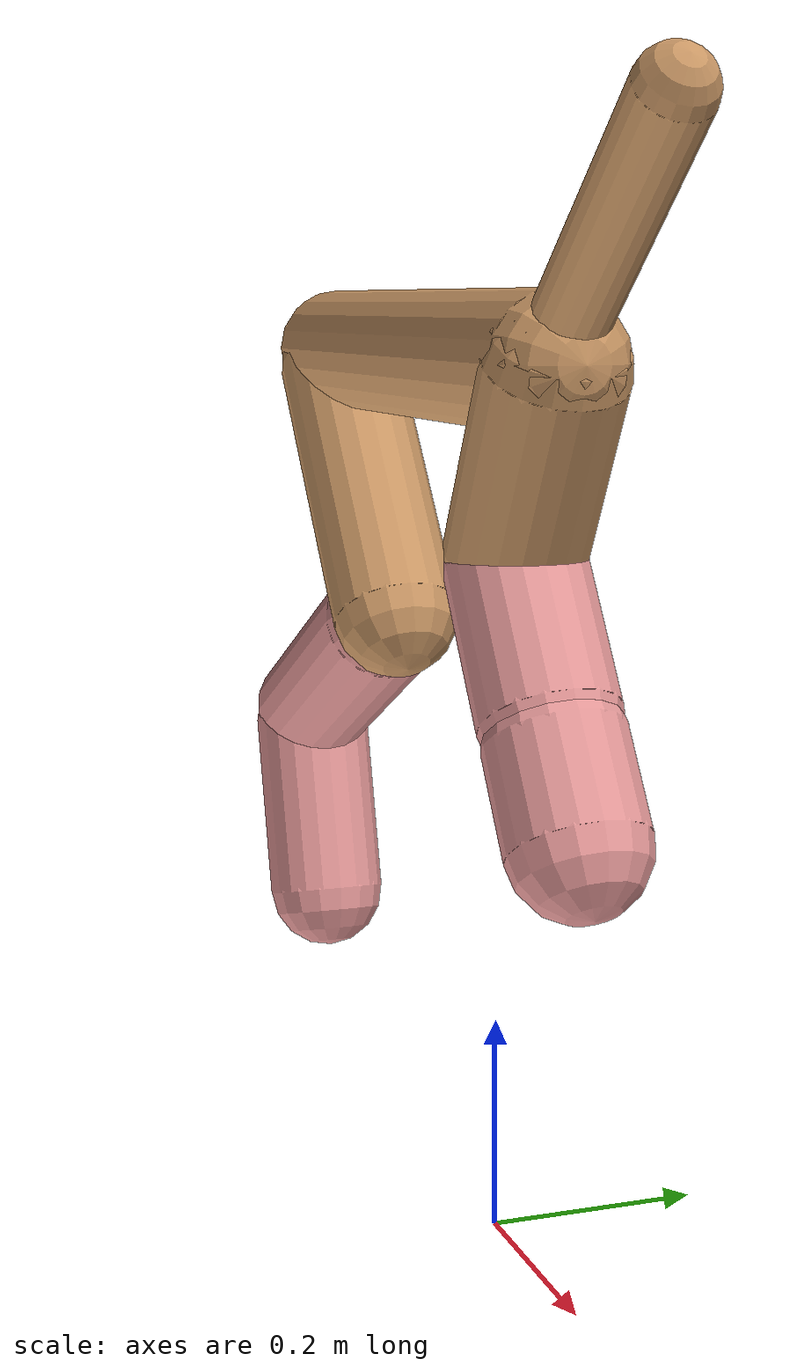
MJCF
<mujoco model="cheetah">
  <compiler angle="radian" coordinate="local" inertiafromgeom="true" settotalmass="14" />
  <default>
    <joint armature=".1" damping=".01" limited="true" solimplimit="0 .8 .03" solreflimit=".02 1" stiffness="8" />
    <geom conaffinity="0" condim="3" contype="1" friction="0.8 .1 .1" rgba="0.8 0.6 .4 1" solimp="0.0 0.8 0.01" solref="0.02 1" />
    <motor ctrllimited="true" ctrlrange="-1 1" />
  </default>
  <size nstack="300000" nuser_geom="1" />
  <option gravity="0 0 -9.81" timestep="0.01" />
  <worldbody>
    <body name="torso" pos="0.0 0.0 0.8024309347729818">
      <joint armature="0" axis="1 0 0" damping="0" limited="false" name="ignorex" pos="0 0 0" stiffness="0" type="slide" />
      <joint armature="0" axis="0 0 1" damping="0" limited="false" name="ignorez" pos="0 0 0" stiffness="0" type="slide" />
      <joint armature="0" axis="0 1 0" damping="0" limited="false" name="ignorey" pos="0 0 0" stiffness="0" type="hinge" />
      <geom fromto="-0.5 0.0 0.0 0.14103289843899008 0.0 0.0" name="torso" size="0.06134484089398383" type="capsule" />
      <geom axisangle="0 1 0 .87" name="head" pos="0.24103289843899012 0.0 0.1" size="0.03376011700229801 0.15" type="capsule" />

      <body name="bthigh" pos="-.5 0 0">
        <joint axis="0 1 0" damping="6" name="bthigh" pos="0 0 0" range="-.52 1.05" stiffness="240" type="hinge" />
        <geom axisangle="0 1 0 -3.8" name="bthigh" pos="0.10767433920370517 0.0 -0.1399766409648167" size="0.06410489381569631 0.1575868521543071" type="capsule" />
        <body name="bshin" pos="0.17534867840741034 0.0 -0.2699532819296334">
          <joint axis="0 1 0" damping="4.5" name="bshin" pos="0 0 0" range="-.785 .785" stiffness="180" type="hinge" />
          <geom axisangle="0 1 0 -2.03" name="bshin" pos="-0.15164623049921533 0.0 -0.07582311524960766" rgba="0.9 0.6 0.6 1" size="0.06410489381569631 0.16302088153893837" type="capsule" />
          <body name="bfoot" pos="-0.30329246099843066 0.0 -0.15164623049921533">
            <joint axis="0 1 0" damping="3" name="bfoot" pos="0 0 0" range="-.4 .785" stiffness="120" type="hinge" />
            <geom axisangle="0 1 0 -.27" name="bfoot" pos="0.03241095978992034 0.0 -0.10479543665407577" rgba="0.9 0.6 0.6 1" size="0.06410489381569631 0.10215975243106805" type="capsule" />
            <inertial mass="10" />
          </body>
        </body>
      </body>
      <body name="fthigh" pos="0.14103289843899014 0.0 0.0">
        <joint axis="0 1 0" damping="4.5" name="fthigh" pos="0 0 0" range="-1.5 0.8" stiffness="180" type="hinge" />
        <geom axisangle="0 1 0 .52" name="fthigh" pos="-0.04989554608158897 0.0 -0.0855352218541525" size="0.06374322931732478 0.0931" type="capsule" />
        <body name="fshin" pos="-0.09979109216317794 0.0 -0.171070443708305">
          <joint axis="0 1 0" damping="3" name="fshin" pos="0 0 0" range="-1.2 1.1" stiffness="120" type="hinge" />
          <geom axisangle="0 1 0 -.6" name="fshin" pos="0.046381400387749405 0.0 -0.06422040053688378" rgba="0.9 0.6 0.6 1" size="0.06374322931732478 0.07419999999999999" type="capsule" />
          <body name="ffoot" pos="0.09276280077549881 0.0 -0.12844080107376757">
            <joint axis="0 1 0" damping="1.5" name="ffoot" pos="0 0 0" range="-3.1 -0.3" stiffness="60" type="hinge" />
            <geom axisangle="0 1 0 -.6" name="ffoot" pos="0.033644090582416526 0.0 -0.05233525201709238" rgba="0.9 0.6 0.6 1" size="0.06374322931732478 0.049" type="capsule" />
            <inertial mass="10" />
          </body>
        </body>
      </body>
    </body>
  </worldbody>
  <actuator>
    <motor gear="120" joint="bthigh" name="bthigh" />
    <motor gear="90" joint="bshin" name="bshin" />
    <motor gear="60" joint="bfoot" name="bfoot" />
    <motor gear="120" joint="fthigh" name="fthigh" />
    <motor gear="60" joint="fshin" name="fshin" />
    <motor gear="30" joint="ffoot" name="ffoot" />
  </actuator>
</mujoco>
